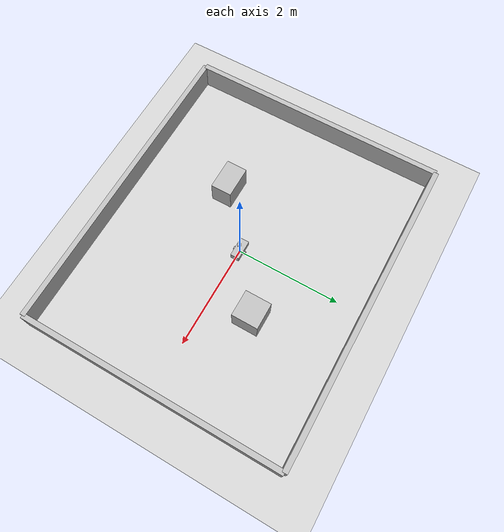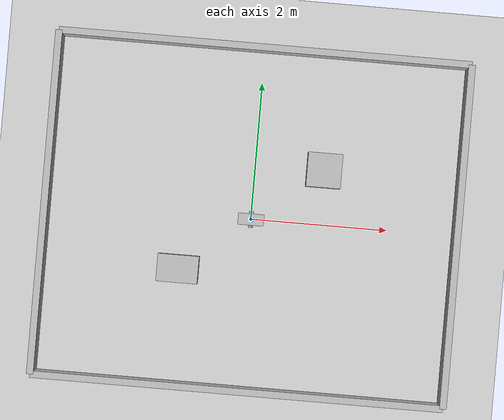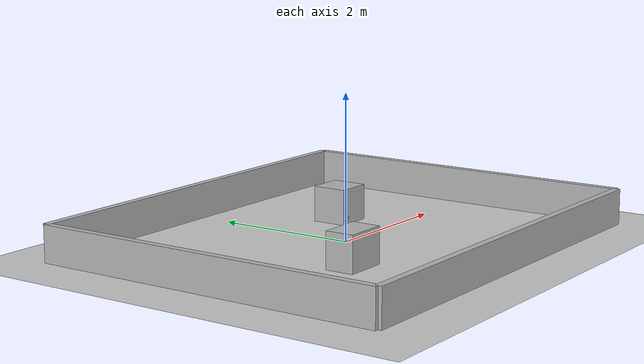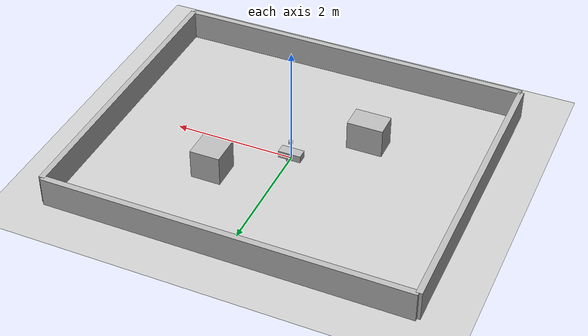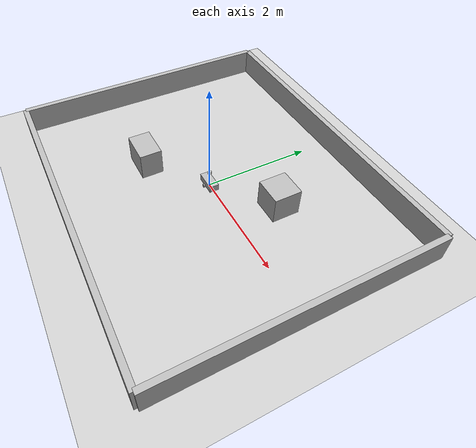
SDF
<?xml version="1.0" ?>
<sdf version="1.9">
  <world name="slamrobot_world">

    <plugin filename="gz-sim-physics-system" name="gz::sim::systems::Physics"/>
    <plugin filename="gz-sim-user-commands-system" name="gz::sim::systems::UserCommands"/>
    <plugin filename="gz-sim-scene-broadcaster-system" name="gz::sim::systems::SceneBroadcaster"/>
    <plugin filename="gz-sim-sensors-system" name="gz::sim::systems::Sensors">
      <render_engine>ogre2</render_engine>
    </plugin>

    <gravity>0 0 -9.81</gravity>

    <light name="sun" type="directional">
      <pose>0 0 10 0 0 0</pose>
      <diffuse>0.8 0.8 0.8 1</diffuse>
      <specular>0.2 0.2 0.2 1</specular>
      <direction>-0.5 0.1 -0.9</direction>
    </light>

    <model name="ground_plane">
      <static>true</static>
      <link name="link">
        <collision name="collision">
          <geometry>
            <plane>
              <normal>0 0 1</normal>
              <size>20 20</size>
            </plane>
          </geometry>
        </collision>
        <visual name="visual">
          <geometry>
            <plane>
              <normal>0 0 1</normal>
              <size>20 20</size>
            </plane>
          </geometry>
        </visual>
      </link>
    </model>

    <model name="wall_front">
      <static>true</static>
      <pose>3 0 0.25 0 0 0</pose>
      <link name="link">
        <collision name="collision">
          <geometry><box><size>0.1 5.0 0.5</size></box></geometry>
        </collision>
        <visual name="visual">
          <geometry><box><size>0.1 5.0 0.5</size></box></geometry>
        </visual>
      </link>
    </model>

    <model name="wall_back">
      <static>true</static>
      <pose>-3 0 0.25 0 0 0</pose>
      <link name="link">
        <collision name="collision">
          <geometry><box><size>0.1 5.0 0.5</size></box></geometry>
        </collision>
        <visual name="visual">
          <geometry><box><size>0.1 5.0 0.5</size></box></geometry>
        </visual>
      </link>
    </model>

    <model name="wall_left">
      <static>true</static>
      <pose>0 2.5 0.25 0 0 0</pose>
      <link name="link">
        <collision name="collision">
          <geometry><box><size>6.0 0.1 0.5</size></box></geometry>
        </collision>
        <visual name="visual">
          <geometry><box><size>6.0 0.1 0.5</size></box></geometry>
        </visual>
      </link>
    </model>

    <model name="wall_right">
      <static>true</static>
      <pose>0 -2.5 0.25 0 0 0</pose>
      <link name="link">
        <collision name="collision">
          <geometry><box><size>6.0 0.1 0.5</size></box></geometry>
        </collision>
        <visual name="visual">
          <geometry><box><size>6.0 0.1 0.5</size></box></geometry>
        </visual>
      </link>
    </model>

    <model name="box_obstacle_1">
      <static>true</static>
      <pose>1.0 0.8 0.25 0 0 0</pose>
      <link name="link">
        <collision name="collision">
          <geometry><box><size>0.5 0.5 0.5</size></box></geometry>
        </collision>
        <visual name="visual">
          <geometry><box><size>0.5 0.5 0.5</size></box></geometry>
        </visual>
      </link>
    </model>

    <model name="box_obstacle_2">
      <static>true</static>
      <pose>-1.0 -0.8 0.25 0 0 0</pose>
      <link name="link">
        <collision name="collision">
          <geometry><box><size>0.6 0.4 0.5</size></box></geometry>
        </collision>
        <visual name="visual">
          <geometry><box><size>0.6 0.4 0.5</size></box></geometry>
        </visual>
      </link>
    </model>

    <model name="slam_robot">
      <pose>0 0 0.08 0 0 0</pose>

      <link name="base_footprint">
        <inertial>
          <mass>5.0</mass>
          <inertia>
            <ixx>0.05</ixx>
            <iyy>0.05</iyy>
            <izz>0.05</izz>
          </inertia>
        </inertial>

        <collision name="base_collision">
          <geometry>
            <box>
              <size>0.38 0.17 0.12</size>
            </box>
          </geometry>
        </collision>

        <visual name="base_visual">
          <geometry>
            <box>
              <size>0.38 0.17 0.12</size>
            </box>
          </geometry>
        </visual>
      </link>

      <link name="left_wheel">
        <pose>0 0.1075 -0.0475 1.5708 0 0</pose>
        <inertial>
          <mass>0.3</mass>
          <inertia>
            <ixx>0.001</ixx>
            <iyy>0.001</iyy>
            <izz>0.001</izz>
          </inertia>
        </inertial>
        <collision name="collision">
          <geometry>
            <cylinder>
              <radius>0.0325</radius>
              <length>0.0253</length>
            </cylinder>
          </geometry>
        </collision>
        <visual name="visual">
          <geometry>
            <cylinder>
              <radius>0.0325</radius>
              <length>0.0253</length>
            </cylinder>
          </geometry>
        </visual>
      </link>

      <link name="right_wheel">
        <pose>0 -0.1075 -0.0475 1.5708 0 0</pose>
        <inertial>
          <mass>0.3</mass>
          <inertia>
            <ixx>0.001</ixx>
            <iyy>0.001</iyy>
            <izz>0.001</izz>
          </inertia>
        </inertial>
        <collision name="collision">
          <geometry>
            <cylinder>
              <radius>0.0325</radius>
              <length>0.0253</length>
            </cylinder>
          </geometry>
        </collision>
        <visual name="visual">
          <geometry>
            <cylinder>
              <radius>0.0325</radius>
              <length>0.0253</length>
            </cylinder>
          </geometry>
        </visual>
      </link>

      <joint name="left_wheel_joint" type="revolute">
        <parent>base_footprint</parent>
        <child>left_wheel</child>
        <axis>
          <xyz>0 1 0</xyz>
        </axis>
      </joint>

      <joint name="right_wheel_joint" type="revolute">
        <parent>base_footprint</parent>
        <child>right_wheel</child>
        <axis>
          <xyz>0 1 0</xyz>
        </axis>
      </joint>

      <link name="laser">
        <pose>0.010 0 0.238 0 0 0</pose>

        <visual name="laser_visual">
          <geometry>
            <cylinder>
              <radius>0.035</radius>
              <length>0.04</length>
            </cylinder>
          </geometry>
        </visual>

        <sensor name="laser" type="gpu_lidar">
          <pose>0 0 0 0 0 0</pose>
          <always_on>true</always_on>
          <visualize>false</visualize>
          <update_rate>10</update_rate>
          <topic>/scan</topic>
          <gz_frame_id>laser</gz_frame_id>

          <ray>
            <scan>
              <horizontal>
                <samples>720</samples>
                <resolution>1</resolution>
                <min_angle>-3.14159</min_angle>
                <max_angle>3.14159</max_angle>
              </horizontal>
            </scan>
            <range>
              <min>0.12</min>
              <max>8.0</max>
              <resolution>0.01</resolution>
            </range>
            <noise>
              <type>gaussian</type>
              <mean>0.0</mean>
              <stddev>0.01</stddev>
            </noise>
          </ray>
        </sensor>
      </link>

      <joint name="laser_joint" type="fixed">
        <parent>base_footprint</parent>
        <child>laser</child>
      </joint>

      <plugin filename="gz-sim-diff-drive-system" name="gz::sim::systems::DiffDrive">
        <left_joint>left_wheel_joint</left_joint>
        <right_joint>right_wheel_joint</right_joint>

        <wheel_separation>0.215</wheel_separation>
        <wheel_radius>0.0325</wheel_radius>

        <topic>/cmd_vel_smoothed</topic>
        <odom_topic>/odom</odom_topic>

        <frame_id>odom</frame_id>
        <child_frame_id>base_footprint</child_frame_id>

        <odom_publish_frequency>30</odom_publish_frequency>
        <max_linear_acceleration>0.5</max_linear_acceleration>
        <max_angular_acceleration>1.0</max_angular_acceleration>
      </plugin>

    </model>

  </world>
</sdf>
